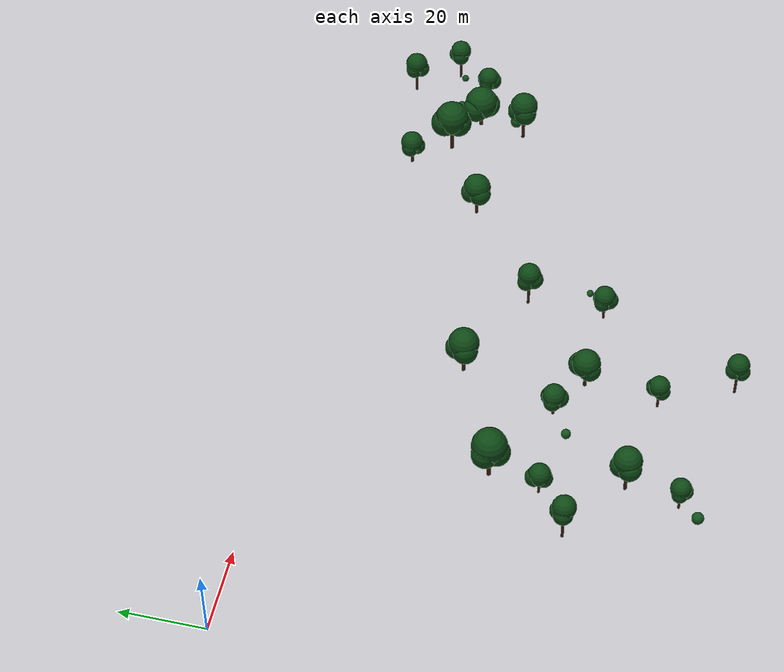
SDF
<sdf version="1.9">
 <world name="forest_monitoring">
  <model name="tree_36">
   <static>true</static>
   <pose>72.70 -61.05 0 0 0 4.54</pose>
   <link name="link">
    <visual name="trunk">
     <pose>0 0 3.84 0 0 0</pose>
     <geometry><cylinder><radius>0.33</radius><length>7.67</length></cylinder></geometry>
     <material>
      <ambient>0.18 0.11 0.06 1</ambient>
      <diffuse>0.24 0.15 0.08 1</diffuse>
      <specular>0.1 0.1 0.1 1</specular>
      <pbr><metal><roughness>0.9</roughness><metalness>0.0</metalness></metal></pbr>
     </material>
    </visual>
    <visual name="canopy_0">
     <pose>0.00 0.00 6.75 0 0 0</pose>
     <geometry><sphere><radius>2.74</radius></sphere></geometry>
     <material>
      <ambient>0.03 0.16 0.05 1</ambient>
      <diffuse>0.05 0.28 0.08 1</diffuse>
      <specular>0.1 0.1 0.1 1</specular>
      <pbr><metal><roughness>1.0</roughness><metalness>0.0</metalness></metal></pbr>
     </material>
    </visual>
    <visual name="canopy_1">
     <pose>1.15 0.33 5.99 0 0 0</pose>
     <geometry><sphere><radius>2.24</radius></sphere></geometry>
     <material>
      <ambient>0.03 0.16 0.05 1</ambient>
      <diffuse>0.05 0.28 0.08 1</diffuse>
      <specular>0.1 0.1 0.1 1</specular>
      <pbr><metal><roughness>1.0</roughness><metalness>0.0</metalness></metal></pbr>
     </material>
    </visual>
    <visual name="canopy_2">
     <pose>-1.04 0.22 5.83 0 0 0</pose>
     <geometry><sphere><radius>2.14</radius></sphere></geometry>
     <material>
      <ambient>0.03 0.16 0.05 1</ambient>
      <diffuse>0.05 0.28 0.08 1</diffuse>
      <specular>0.1 0.1 0.1 1</specular>
      <pbr><metal><roughness>1.0</roughness><metalness>0.0</metalness></metal></pbr>
     </material>
    </visual>
    <visual name="canopy_3">
     <pose>0.11 -1.15 5.68 0 0 0</pose>
     <geometry><sphere><radius>2.08</radius></sphere></geometry>
     <material>
      <ambient>0.03 0.16 0.05 1</ambient>
      <diffuse>0.05 0.28 0.08 1</diffuse>
      <specular>0.1 0.1 0.1 1</specular>
      <pbr><metal><roughness>1.0</roughness><metalness>0.0</metalness></metal></pbr>
     </material>
    </visual>
   </link>
  </model>
  <model name="tree_37">
   <static>true</static>
   <pose>80.02 -84.02 0 0 0 1.06</pose>
   <link name="link">
    <visual name="trunk">
     <pose>0 0 4.21 0 0 0</pose>
     <geometry><cylinder><radius>0.30</radius><length>8.43</length></cylinder></geometry>
     <material>
      <ambient>0.18 0.11 0.06 1</ambient>
      <diffuse>0.24 0.15 0.08 1</diffuse>
      <specular>0.1 0.1 0.1 1</specular>
      <pbr><metal><roughness>0.9</roughness><metalness>0.0</metalness></metal></pbr>
     </material>
    </visual>
    <visual name="canopy_0">
     <pose>0.00 0.00 7.42 0 0 0</pose>
     <geometry><sphere><radius>2.47</radius></sphere></geometry>
     <material>
      <ambient>0.03 0.16 0.05 1</ambient>
      <diffuse>0.05 0.28 0.08 1</diffuse>
      <specular>0.1 0.1 0.1 1</specular>
      <pbr><metal><roughness>1.0</roughness><metalness>0.0</metalness></metal></pbr>
     </material>
    </visual>
    <visual name="canopy_1">
     <pose>1.04 0.30 6.57 0 0 0</pose>
     <geometry><sphere><radius>2.03</radius></sphere></geometry>
     <material>
      <ambient>0.03 0.16 0.05 1</ambient>
      <diffuse>0.05 0.28 0.08 1</diffuse>
      <specular>0.1 0.1 0.1 1</specular>
      <pbr><metal><roughness>1.0</roughness><metalness>0.0</metalness></metal></pbr>
     </material>
    </visual>
    <visual name="canopy_2">
     <pose>-0.94 0.20 6.41 0 0 0</pose>
     <geometry><sphere><radius>1.93</radius></sphere></geometry>
     <material>
      <ambient>0.03 0.16 0.05 1</ambient>
      <diffuse>0.05 0.28 0.08 1</diffuse>
      <specular>0.1 0.1 0.1 1</specular>
      <pbr><metal><roughness>1.0</roughness><metalness>0.0</metalness></metal></pbr>
     </material>
    </visual>
    <visual name="canopy_3">
     <pose>0.10 -1.04 6.24 0 0 0</pose>
     <geometry><sphere><radius>1.88</radius></sphere></geometry>
     <material>
      <ambient>0.03 0.16 0.05 1</ambient>
      <diffuse>0.05 0.28 0.08 1</diffuse>
      <specular>0.1 0.1 0.1 1</specular>
      <pbr><metal><roughness>1.0</roughness><metalness>0.0</metalness></metal></pbr>
     </material>
    </visual>
   </link>
  </model>
  <model name="tree_38">
   <static>true</static>
   <pose>103.49 -49.06 0 0 0 4.16</pose>
   <link name="link">
    <visual name="trunk">
     <pose>0 0 5.86 0 0 0</pose>
     <geometry><cylinder><radius>0.33</radius><length>11.73</length></cylinder></geometry>
     <material>
      <ambient>0.18 0.11 0.06 1</ambient>
      <diffuse>0.24 0.15 0.08 1</diffuse>
      <specular>0.1 0.1 0.1 1</specular>
      <pbr><metal><roughness>0.9</roughness><metalness>0.0</metalness></metal></pbr>
     </material>
    </visual>
    <visual name="canopy_0">
     <pose>0.00 0.00 10.32 0 0 0</pose>
     <geometry><sphere><radius>2.73</radius></sphere></geometry>
     <material>
      <ambient>0.03 0.16 0.05 1</ambient>
      <diffuse>0.05 0.28 0.08 1</diffuse>
      <specular>0.1 0.1 0.1 1</specular>
      <pbr><metal><roughness>1.0</roughness><metalness>0.0</metalness></metal></pbr>
     </material>
    </visual>
    <visual name="canopy_1">
     <pose>1.15 0.33 9.15 0 0 0</pose>
     <geometry><sphere><radius>2.24</radius></sphere></geometry>
     <material>
      <ambient>0.03 0.16 0.05 1</ambient>
      <diffuse>0.05 0.28 0.08 1</diffuse>
      <specular>0.1 0.1 0.1 1</specular>
      <pbr><metal><roughness>1.0</roughness><metalness>0.0</metalness></metal></pbr>
     </material>
    </visual>
    <visual name="canopy_2">
     <pose>-1.04 0.22 8.91 0 0 0</pose>
     <geometry><sphere><radius>2.13</radius></sphere></geometry>
     <material>
      <ambient>0.03 0.16 0.05 1</ambient>
      <diffuse>0.05 0.28 0.08 1</diffuse>
      <specular>0.1 0.1 0.1 1</specular>
      <pbr><metal><roughness>1.0</roughness><metalness>0.0</metalness></metal></pbr>
     </material>
    </visual>
    <visual name="canopy_3">
     <pose>0.11 -1.15 8.68 0 0 0</pose>
     <geometry><sphere><radius>2.07</radius></sphere></geometry>
     <material>
      <ambient>0.03 0.16 0.05 1</ambient>
      <diffuse>0.05 0.28 0.08 1</diffuse>
      <specular>0.1 0.1 0.1 1</specular>
      <pbr><metal><roughness>1.0</roughness><metalness>0.0</metalness></metal></pbr>
     </material>
    </visual>
   </link>
  </model>
  <model name="tree_39">
   <static>true</static>
   <pose>52.89 -50.21 0 0 0 6.06</pose>
   <link name="link">
    <visual name="trunk">
     <pose>0 0 6.19 0 0 0</pose>
     <geometry><cylinder><radius>0.50</radius><length>12.39</length></cylinder></geometry>
     <material>
      <ambient>0.18 0.11 0.06 1</ambient>
      <diffuse>0.24 0.15 0.08 1</diffuse>
      <specular>0.1 0.1 0.1 1</specular>
      <pbr><metal><roughness>0.9</roughness><metalness>0.0</metalness></metal></pbr>
     </material>
    </visual>
    <visual name="canopy_0">
     <pose>0.00 0.00 10.90 0 0 0</pose>
     <geometry><sphere><radius>4.14</radius></sphere></geometry>
     <material>
      <ambient>0.03 0.16 0.05 1</ambient>
      <diffuse>0.05 0.28 0.08 1</diffuse>
      <specular>0.1 0.1 0.1 1</specular>
      <pbr><metal><roughness>1.0</roughness><metalness>0.0</metalness></metal></pbr>
     </material>
    </visual>
    <visual name="canopy_1">
     <pose>1.74 0.50 9.66 0 0 0</pose>
     <geometry><sphere><radius>3.40</radius></sphere></geometry>
     <material>
      <ambient>0.03 0.16 0.05 1</ambient>
      <diffuse>0.05 0.28 0.08 1</diffuse>
      <specular>0.1 0.1 0.1 1</specular>
      <pbr><metal><roughness>1.0</roughness><metalness>0.0</metalness></metal></pbr>
     </material>
    </visual>
    <visual name="canopy_2">
     <pose>-1.57 0.33 9.41 0 0 0</pose>
     <geometry><sphere><radius>3.23</radius></sphere></geometry>
     <material>
      <ambient>0.03 0.16 0.05 1</ambient>
      <diffuse>0.05 0.28 0.08 1</diffuse>
      <specular>0.1 0.1 0.1 1</specular>
      <pbr><metal><roughness>1.0</roughness><metalness>0.0</metalness></metal></pbr>
     </material>
    </visual>
    <visual name="canopy_3">
     <pose>0.17 -1.74 9.17 0 0 0</pose>
     <geometry><sphere><radius>3.15</radius></sphere></geometry>
     <material>
      <ambient>0.03 0.16 0.05 1</ambient>
      <diffuse>0.05 0.28 0.08 1</diffuse>
      <specular>0.1 0.1 0.1 1</specular>
      <pbr><metal><roughness>1.0</roughness><metalness>0.0</metalness></metal></pbr>
     </material>
    </visual>
   </link>
  </model>
  <model name="tree_40">
   <static>true</static>
   <pose>80.45 -38.35 0 0 0 3.26</pose>
   <link name="link">
    <visual name="trunk">
     <pose>0 0 5.69 0 0 0</pose>
     <geometry><cylinder><radius>0.44</radius><length>11.37</length></cylinder></geometry>
     <material>
      <ambient>0.18 0.11 0.06 1</ambient>
      <diffuse>0.24 0.15 0.08 1</diffuse>
      <specular>0.1 0.1 0.1 1</specular>
      <pbr><metal><roughness>0.9</roughness><metalness>0.0</metalness></metal></pbr>
     </material>
    </visual>
    <visual name="canopy_0">
     <pose>0.00 0.00 10.01 0 0 0</pose>
     <geometry><sphere><radius>3.63</radius></sphere></geometry>
     <material>
      <ambient>0.03 0.16 0.05 1</ambient>
      <diffuse>0.05 0.28 0.08 1</diffuse>
      <specular>0.1 0.1 0.1 1</specular>
      <pbr><metal><roughness>1.0</roughness><metalness>0.0</metalness></metal></pbr>
     </material>
    </visual>
    <visual name="canopy_1">
     <pose>1.52 0.44 8.87 0 0 0</pose>
     <geometry><sphere><radius>2.98</radius></sphere></geometry>
     <material>
      <ambient>0.03 0.16 0.05 1</ambient>
      <diffuse>0.05 0.28 0.08 1</diffuse>
      <specular>0.1 0.1 0.1 1</specular>
      <pbr><metal><roughness>1.0</roughness><metalness>0.0</metalness></metal></pbr>
     </material>
    </visual>
    <visual name="canopy_2">
     <pose>-1.38 0.29 8.64 0 0 0</pose>
     <geometry><sphere><radius>2.83</radius></sphere></geometry>
     <material>
      <ambient>0.03 0.16 0.05 1</ambient>
      <diffuse>0.05 0.28 0.08 1</diffuse>
      <specular>0.1 0.1 0.1 1</specular>
      <pbr><metal><roughness>1.0</roughness><metalness>0.0</metalness></metal></pbr>
     </material>
    </visual>
    <visual name="canopy_3">
     <pose>0.15 -1.52 8.42 0 0 0</pose>
     <geometry><sphere><radius>2.76</radius></sphere></geometry>
     <material>
      <ambient>0.03 0.16 0.05 1</ambient>
      <diffuse>0.05 0.28 0.08 1</diffuse>
      <specular>0.1 0.1 0.1 1</specular>
      <pbr><metal><roughness>1.0</roughness><metalness>0.0</metalness></metal></pbr>
     </material>
    </visual>
   </link>
  </model>
  <model name="tree_41">
   <static>true</static>
   <pose>55.80 -80.73 0 0 0 3.35</pose>
   <link name="link">
    <visual name="trunk">
     <pose>0 0 6.03 0 0 0</pose>
     <geometry><cylinder><radius>0.40</radius><length>12.07</length></cylinder></geometry>
     <material>
      <ambient>0.18 0.11 0.06 1</ambient>
      <diffuse>0.24 0.15 0.08 1</diffuse>
      <specular>0.1 0.1 0.1 1</specular>
      <pbr><metal><roughness>0.9</roughness><metalness>0.0</metalness></metal></pbr>
     </material>
    </visual>
    <visual name="canopy_0">
     <pose>0.00 0.00 10.62 0 0 0</pose>
     <geometry><sphere><radius>3.36</radius></sphere></geometry>
     <material>
      <ambient>0.03 0.16 0.05 1</ambient>
      <diffuse>0.05 0.28 0.08 1</diffuse>
      <specular>0.1 0.1 0.1 1</specular>
      <pbr><metal><roughness>1.0</roughness><metalness>0.0</metalness></metal></pbr>
     </material>
    </visual>
    <visual name="canopy_1">
     <pose>1.41 0.40 9.41 0 0 0</pose>
     <geometry><sphere><radius>2.75</radius></sphere></geometry>
     <material>
      <ambient>0.03 0.16 0.05 1</ambient>
      <diffuse>0.05 0.28 0.08 1</diffuse>
      <specular>0.1 0.1 0.1 1</specular>
      <pbr><metal><roughness>1.0</roughness><metalness>0.0</metalness></metal></pbr>
     </material>
    </visual>
    <visual name="canopy_2">
     <pose>-1.28 0.27 9.17 0 0 0</pose>
     <geometry><sphere><radius>2.62</radius></sphere></geometry>
     <material>
      <ambient>0.03 0.16 0.05 1</ambient>
      <diffuse>0.05 0.28 0.08 1</diffuse>
      <specular>0.1 0.1 0.1 1</specular>
      <pbr><metal><roughness>1.0</roughness><metalness>0.0</metalness></metal></pbr>
     </material>
    </visual>
    <visual name="canopy_3">
     <pose>0.13 -1.41 8.93 0 0 0</pose>
     <geometry><sphere><radius>2.55</radius></sphere></geometry>
     <material>
      <ambient>0.03 0.16 0.05 1</ambient>
      <diffuse>0.05 0.28 0.08 1</diffuse>
      <specular>0.1 0.1 0.1 1</specular>
      <pbr><metal><roughness>1.0</roughness><metalness>0.0</metalness></metal></pbr>
     </material>
    </visual>
   </link>
  </model>
  <model name="tree_42">
   <static>true</static>
   <pose>102.93 -67.28 0 0 0 4.37</pose>
   <link name="link">
    <visual name="trunk">
     <pose>0 0 4.38 0 0 0</pose>
     <geometry><cylinder><radius>0.31</radius><length>8.75</length></cylinder></geometry>
     <material>
      <ambient>0.18 0.11 0.06 1</ambient>
      <diffuse>0.24 0.15 0.08 1</diffuse>
      <specular>0.1 0.1 0.1 1</specular>
      <pbr><metal><roughness>0.9</roughness><metalness>0.0</metalness></metal></pbr>
     </material>
    </visual>
    <visual name="canopy_0">
     <pose>0.00 0.00 7.70 0 0 0</pose>
     <geometry><sphere><radius>2.59</radius></sphere></geometry>
     <material>
      <ambient>0.03 0.16 0.05 1</ambient>
      <diffuse>0.05 0.28 0.08 1</diffuse>
      <specular>0.1 0.1 0.1 1</specular>
      <pbr><metal><roughness>1.0</roughness><metalness>0.0</metalness></metal></pbr>
     </material>
    </visual>
    <visual name="canopy_1">
     <pose>1.09 0.31 6.83 0 0 0</pose>
     <geometry><sphere><radius>2.12</radius></sphere></geometry>
     <material>
      <ambient>0.03 0.16 0.05 1</ambient>
      <diffuse>0.05 0.28 0.08 1</diffuse>
      <specular>0.1 0.1 0.1 1</specular>
      <pbr><metal><roughness>1.0</roughness><metalness>0.0</metalness></metal></pbr>
     </material>
    </visual>
    <visual name="canopy_2">
     <pose>-0.98 0.21 6.65 0 0 0</pose>
     <geometry><sphere><radius>2.02</radius></sphere></geometry>
     <material>
      <ambient>0.03 0.16 0.05 1</ambient>
      <diffuse>0.05 0.28 0.08 1</diffuse>
      <specular>0.1 0.1 0.1 1</specular>
      <pbr><metal><roughness>1.0</roughness><metalness>0.0</metalness></metal></pbr>
     </material>
    </visual>
    <visual name="canopy_3">
     <pose>0.10 -1.09 6.48 0 0 0</pose>
     <geometry><sphere><radius>1.97</radius></sphere></geometry>
     <material>
      <ambient>0.03 0.16 0.05 1</ambient>
      <diffuse>0.05 0.28 0.08 1</diffuse>
      <specular>0.1 0.1 0.1 1</specular>
      <pbr><metal><roughness>1.0</roughness><metalness>0.0</metalness></metal></pbr>
     </material>
    </visual>
   </link>
  </model>
  <model name="tree_43">
   <static>true</static>
   <pose>50.64 -62.07 0 0 0 1.60</pose>
   <link name="link">
    <visual name="trunk">
     <pose>0 0 3.78 0 0 0</pose>
     <geometry><cylinder><radius>0.32</radius><length>7.56</length></cylinder></geometry>
     <material>
      <ambient>0.18 0.11 0.06 1</ambient>
      <diffuse>0.24 0.15 0.08 1</diffuse>
      <specular>0.1 0.1 0.1 1</specular>
      <pbr><metal><roughness>0.9</roughness><metalness>0.0</metalness></metal></pbr>
     </material>
    </visual>
    <visual name="canopy_0">
     <pose>0.00 0.00 6.66 0 0 0</pose>
     <geometry><sphere><radius>2.65</radius></sphere></geometry>
     <material>
      <ambient>0.03 0.16 0.05 1</ambient>
      <diffuse>0.05 0.28 0.08 1</diffuse>
      <specular>0.1 0.1 0.1 1</specular>
      <pbr><metal><roughness>1.0</roughness><metalness>0.0</metalness></metal></pbr>
     </material>
    </visual>
    <visual name="canopy_1">
     <pose>1.11 0.32 5.90 0 0 0</pose>
     <geometry><sphere><radius>2.17</radius></sphere></geometry>
     <material>
      <ambient>0.03 0.16 0.05 1</ambient>
      <diffuse>0.05 0.28 0.08 1</diffuse>
      <specular>0.1 0.1 0.1 1</specular>
      <pbr><metal><roughness>1.0</roughness><metalness>0.0</metalness></metal></pbr>
     </material>
    </visual>
    <visual name="canopy_2">
     <pose>-1.01 0.21 5.75 0 0 0</pose>
     <geometry><sphere><radius>2.06</radius></sphere></geometry>
     <material>
      <ambient>0.03 0.16 0.05 1</ambient>
      <diffuse>0.05 0.28 0.08 1</diffuse>
      <specular>0.1 0.1 0.1 1</specular>
      <pbr><metal><roughness>1.0</roughness><metalness>0.0</metalness></metal></pbr>
     </material>
    </visual>
    <visual name="canopy_3">
     <pose>0.11 -1.11 5.60 0 0 0</pose>
     <geometry><sphere><radius>2.01</radius></sphere></geometry>
     <material>
      <ambient>0.03 0.16 0.05 1</ambient>
      <diffuse>0.05 0.28 0.08 1</diffuse>
      <specular>0.1 0.1 0.1 1</specular>
      <pbr><metal><roughness>1.0</roughness><metalness>0.0</metalness></metal></pbr>
     </material>
    </visual>
   </link>
  </model>
  <model name="tree_44">
   <static>true</static>
   <pose>87.93 -100.73 0 0 0 5.62</pose>
   <link name="link">
    <visual name="trunk">
     <pose>0 0 5.78 0 0 0</pose>
     <geometry><cylinder><radius>0.31</radius><length>11.56</length></cylinder></geometry>
     <material>
      <ambient>0.18 0.11 0.06 1</ambient>
      <diffuse>0.24 0.15 0.08 1</diffuse>
      <specular>0.1 0.1 0.1 1</specular>
      <pbr><metal><roughness>0.9</roughness><metalness>0.0</metalness></metal></pbr>
     </material>
    </visual>
    <visual name="canopy_0">
     <pose>0.00 0.00 10.17 0 0 0</pose>
     <geometry><sphere><radius>2.61</radius></sphere></geometry>
     <material>
      <ambient>0.03 0.16 0.05 1</ambient>
      <diffuse>0.05 0.28 0.08 1</diffuse>
      <specular>0.1 0.1 0.1 1</specular>
      <pbr><metal><roughness>1.0</roughness><metalness>0.0</metalness></metal></pbr>
     </material>
    </visual>
    <visual name="canopy_1">
     <pose>1.10 0.31 9.02 0 0 0</pose>
     <geometry><sphere><radius>2.14</radius></sphere></geometry>
     <material>
      <ambient>0.03 0.16 0.05 1</ambient>
      <diffuse>0.05 0.28 0.08 1</diffuse>
      <specular>0.1 0.1 0.1 1</specular>
      <pbr><metal><roughness>1.0</roughness><metalness>0.0</metalness></metal></pbr>
     </material>
    </visual>
    <visual name="canopy_2">
     <pose>-0.99 0.21 8.78 0 0 0</pose>
     <geometry><sphere><radius>2.04</radius></sphere></geometry>
     <material>
      <ambient>0.03 0.16 0.05 1</ambient>
      <diffuse>0.05 0.28 0.08 1</diffuse>
      <specular>0.1 0.1 0.1 1</specular>
      <pbr><metal><roughness>1.0</roughness><metalness>0.0</metalness></metal></pbr>
     </material>
    </visual>
    <visual name="canopy_3">
     <pose>0.10 -1.10 8.55 0 0 0</pose>
     <geometry><sphere><radius>1.99</radius></sphere></geometry>
     <material>
      <ambient>0.03 0.16 0.05 1</ambient>
      <diffuse>0.05 0.28 0.08 1</diffuse>
      <specular>0.1 0.1 0.1 1</specular>
      <pbr><metal><roughness>1.0</roughness><metalness>0.0</metalness></metal></pbr>
     </material>
    </visual>
   </link>
  </model>
  <model name="tree_45">
   <static>true</static>
   <pose>53.36 -93.23 0 0 0 0.16</pose>
   <link name="link">
    <visual name="trunk">
     <pose>0 0 4.18 0 0 0</pose>
     <geometry><cylinder><radius>0.29</radius><length>8.35</length></cylinder></geometry>
     <material>
      <ambient>0.18 0.11 0.06 1</ambient>
      <diffuse>0.24 0.15 0.08 1</diffuse>
      <specular>0.1 0.1 0.1 1</specular>
      <pbr><metal><roughness>0.9</roughness><metalness>0.0</metalness></metal></pbr>
     </material>
    </visual>
    <visual name="canopy_0">
     <pose>0.00 0.00 7.35 0 0 0</pose>
     <geometry><sphere><radius>2.43</radius></sphere></geometry>
     <material>
      <ambient>0.03 0.16 0.05 1</ambient>
      <diffuse>0.05 0.28 0.08 1</diffuse>
      <specular>0.1 0.1 0.1 1</specular>
      <pbr><metal><roughness>1.0</roughness><metalness>0.0</metalness></metal></pbr>
     </material>
    </visual>
    <visual name="canopy_1">
     <pose>1.02 0.29 6.52 0 0 0</pose>
     <geometry><sphere><radius>1.99</radius></sphere></geometry>
     <material>
      <ambient>0.03 0.16 0.05 1</ambient>
      <diffuse>0.05 0.28 0.08 1</diffuse>
      <specular>0.1 0.1 0.1 1</specular>
      <pbr><metal><roughness>1.0</roughness><metalness>0.0</metalness></metal></pbr>
     </material>
    </visual>
    <visual name="canopy_2">
     <pose>-0.92 0.19 6.35 0 0 0</pose>
     <geometry><sphere><radius>1.89</radius></sphere></geometry>
     <material>
      <ambient>0.03 0.16 0.05 1</ambient>
      <diffuse>0.05 0.28 0.08 1</diffuse>
      <specular>0.1 0.1 0.1 1</specular>
      <pbr><metal><roughness>1.0</roughness><metalness>0.0</metalness></metal></pbr>
     </material>
    </visual>
    <visual name="canopy_3">
     <pose>0.10 -1.02 6.18 0 0 0</pose>
     <geometry><sphere><radius>1.84</radius></sphere></geometry>
     <material>
      <ambient>0.03 0.16 0.05 1</ambient>
      <diffuse>0.05 0.28 0.08 1</diffuse>
      <specular>0.1 0.1 0.1 1</specular>
      <pbr><metal><roughness>1.0</roughness><metalness>0.0</metalness></metal></pbr>
     </material>
    </visual>
   </link>
  </model>
  <model name="tree_46">
   <static>true</static>
   <pose>40.21 -69.42 0 0 0 2.90</pose>
   <link name="link">
    <visual name="trunk">
     <pose>0 0 6.41 0 0 0</pose>
     <geometry><cylinder><radius>0.33</radius><length>12.83</length></cylinder></geometry>
     <material>
      <ambient>0.18 0.11 0.06 1</ambient>
      <diffuse>0.24 0.15 0.08 1</diffuse>
      <specular>0.1 0.1 0.1 1</specular>
      <pbr><metal><roughness>0.9</roughness><metalness>0.0</metalness></metal></pbr>
     </material>
    </visual>
    <visual name="canopy_0">
     <pose>0.00 0.00 11.29 0 0 0</pose>
     <geometry><sphere><radius>2.77</radius></sphere></geometry>
     <material>
      <ambient>0.03 0.16 0.05 1</ambient>
      <diffuse>0.05 0.28 0.08 1</diffuse>
      <specular>0.1 0.1 0.1 1</specular>
      <pbr><metal><roughness>1.0</roughness><metalness>0.0</metalness></metal></pbr>
     </material>
    </visual>
    <visual name="canopy_1">
     <pose>1.16 0.33 10.01 0 0 0</pose>
     <geometry><sphere><radius>2.27</radius></sphere></geometry>
     <material>
      <ambient>0.03 0.16 0.05 1</ambient>
      <diffuse>0.05 0.28 0.08 1</diffuse>
      <specular>0.1 0.1 0.1 1</specular>
      <pbr><metal><roughness>1.0</roughness><metalness>0.0</metalness></metal></pbr>
     </material>
    </visual>
    <visual name="canopy_2">
     <pose>-1.05 0.22 9.75 0 0 0</pose>
     <geometry><sphere><radius>2.16</radius></sphere></geometry>
     <material>
      <ambient>0.03 0.16 0.05 1</ambient>
      <diffuse>0.05 0.28 0.08 1</diffuse>
      <specular>0.1 0.1 0.1 1</specular>
      <pbr><metal><roughness>1.0</roughness><metalness>0.0</metalness></metal></pbr>
     </material>
    </visual>
    <visual name="canopy_3">
     <pose>0.11 -1.16 9.49 0 0 0</pose>
     <geometry><sphere><radius>2.10</radius></sphere></geometry>
     <material>
      <ambient>0.03 0.16 0.05 1</ambient>
      <diffuse>0.05 0.28 0.08 1</diffuse>
      <specular>0.1 0.1 0.1 1</specular>
      <pbr><metal><roughness>1.0</roughness><metalness>0.0</metalness></metal></pbr>
     </material>
    </visual>
   </link>
  </model>
  <model name="tree_47">
   <static>true</static>
   <pose>82.32 -66.65 0 0 0 1.06</pose>
   <link name="link">
    <visual name="trunk">
     <pose>0 0 4.58 0 0 0</pose>
     <geometry><cylinder><radius>0.40</radius><length>9.17</length></cylinder></geometry>
     <material>
      <ambient>0.18 0.11 0.06 1</ambient>
      <diffuse>0.24 0.15 0.08 1</diffuse>
      <specular>0.1 0.1 0.1 1</specular>
      <pbr><metal><roughness>0.9</roughness><metalness>0.0</metalness></metal></pbr>
     </material>
    </visual>
    <visual name="canopy_0">
     <pose>0.00 0.00 8.07 0 0 0</pose>
     <geometry><sphere><radius>3.36</radius></sphere></geometry>
     <material>
      <ambient>0.03 0.16 0.05 1</ambient>
      <diffuse>0.05 0.28 0.08 1</diffuse>
      <specular>0.1 0.1 0.1 1</specular>
      <pbr><metal><roughness>1.0</roughness><metalness>0.0</metalness></metal></pbr>
     </material>
    </visual>
    <visual name="canopy_1">
     <pose>1.41 0.40 7.15 0 0 0</pose>
     <geometry><sphere><radius>2.76</radius></sphere></geometry>
     <material>
      <ambient>0.03 0.16 0.05 1</ambient>
      <diffuse>0.05 0.28 0.08 1</diffuse>
      <specular>0.1 0.1 0.1 1</specular>
      <pbr><metal><roughness>1.0</roughness><metalness>0.0</metalness></metal></pbr>
     </material>
    </visual>
    <visual name="canopy_2">
     <pose>-1.28 0.27 6.97 0 0 0</pose>
     <geometry><sphere><radius>2.62</radius></sphere></geometry>
     <material>
      <ambient>0.03 0.16 0.05 1</ambient>
      <diffuse>0.05 0.28 0.08 1</diffuse>
      <specular>0.1 0.1 0.1 1</specular>
      <pbr><metal><roughness>1.0</roughness><metalness>0.0</metalness></metal></pbr>
     </material>
    </visual>
    <visual name="canopy_3">
     <pose>0.13 -1.41 6.78 0 0 0</pose>
     <geometry><sphere><radius>2.56</radius></sphere></geometry>
     <material>
      <ambient>0.03 0.16 0.05 1</ambient>
      <diffuse>0.05 0.28 0.08 1</diffuse>
      <specular>0.1 0.1 0.1 1</specular>
      <pbr><metal><roughness>1.0</roughness><metalness>0.0</metalness></metal></pbr>
     </material>
    </visual>
   </link>
  </model>
  <model name="tree_60">
   <static>true</static>
   <pose>141.65 -11.87 0 0 0 0.02</pose>
   <link name="link">
    <visual name="trunk">
     <pose>0 0 3.89 0 0 0</pose>
     <geometry><cylinder><radius>0.33</radius><length>7.79</length></cylinder></geometry>
     <material>
      <ambient>0.18 0.11 0.06 1</ambient>
      <diffuse>0.24 0.15 0.08 1</diffuse>
      <specular>0.1 0.1 0.1 1</specular>
      <pbr><metal><roughness>0.9</roughness><metalness>0.0</metalness></metal></pbr>
     </material>
    </visual>
    <visual name="canopy_0">
     <pose>0.00 0.00 6.85 0 0 0</pose>
     <geometry><sphere><radius>2.73</radius></sphere></geometry>
     <material>
      <ambient>0.03 0.16 0.05 1</ambient>
      <diffuse>0.05 0.28 0.08 1</diffuse>
      <specular>0.1 0.1 0.1 1</specular>
      <pbr><metal><roughness>1.0</roughness><metalness>0.0</metalness></metal></pbr>
     </material>
    </visual>
    <visual name="canopy_1">
     <pose>1.15 0.33 6.07 0 0 0</pose>
     <geometry><sphere><radius>2.24</radius></sphere></geometry>
     <material>
      <ambient>0.03 0.16 0.05 1</ambient>
      <diffuse>0.05 0.28 0.08 1</diffuse>
      <specular>0.1 0.1 0.1 1</specular>
      <pbr><metal><roughness>1.0</roughness><metalness>0.0</metalness></metal></pbr>
     </material>
    </visual>
    <visual name="canopy_2">
     <pose>-1.04 0.22 5.92 0 0 0</pose>
     <geometry><sphere><radius>2.13</radius></sphere></geometry>
     <material>
      <ambient>0.03 0.16 0.05 1</ambient>
      <diffuse>0.05 0.28 0.08 1</diffuse>
      <specular>0.1 0.1 0.1 1</specular>
      <pbr><metal><roughness>1.0</roughness><metalness>0.0</metalness></metal></pbr>
     </material>
    </visual>
    <visual name="canopy_3">
     <pose>0.11 -1.15 5.76 0 0 0</pose>
     <geometry><sphere><radius>2.08</radius></sphere></geometry>
     <material>
      <ambient>0.03 0.16 0.05 1</ambient>
      <diffuse>0.05 0.28 0.08 1</diffuse>
      <specular>0.1 0.1 0.1 1</specular>
      <pbr><metal><roughness>1.0</roughness><metalness>0.0</metalness></metal></pbr>
     </material>
    </visual>
   </link>
  </model>
  <model name="tree_63">
   <static>true</static>
   <pose>167.80 -25.74 0 0 0 4.44</pose>
   <link name="link">
    <visual name="trunk">
     <pose>0 0 3.80 0 0 0</pose>
     <geometry><cylinder><radius>0.31</radius><length>7.60</length></cylinder></geometry>
     <material>
      <ambient>0.18 0.11 0.06 1</ambient>
      <diffuse>0.24 0.15 0.08 1</diffuse>
      <specular>0.1 0.1 0.1 1</specular>
      <pbr><metal><roughness>0.9</roughness><metalness>0.0</metalness></metal></pbr>
     </material>
    </visual>
    <visual name="canopy_0">
     <pose>0.00 0.00 6.69 0 0 0</pose>
     <geometry><sphere><radius>2.58</radius></sphere></geometry>
     <material>
      <ambient>0.03 0.16 0.05 1</ambient>
      <diffuse>0.05 0.28 0.08 1</diffuse>
      <specular>0.1 0.1 0.1 1</specular>
      <pbr><metal><roughness>1.0</roughness><metalness>0.0</metalness></metal></pbr>
     </material>
    </visual>
    <visual name="canopy_1">
     <pose>1.08 0.31 5.93 0 0 0</pose>
     <geometry><sphere><radius>2.11</radius></sphere></geometry>
     <material>
      <ambient>0.03 0.16 0.05 1</ambient>
      <diffuse>0.05 0.28 0.08 1</diffuse>
      <specular>0.1 0.1 0.1 1</specular>
      <pbr><metal><roughness>1.0</roughness><metalness>0.0</metalness></metal></pbr>
     </material>
    </visual>
    <visual name="canopy_2">
     <pose>-0.98 0.21 5.77 0 0 0</pose>
     <geometry><sphere><radius>2.01</radius></sphere></geometry>
     <material>
      <ambient>0.03 0.16 0.05 1</ambient>
      <diffuse>0.05 0.28 0.08 1</diffuse>
      <specular>0.1 0.1 0.1 1</specular>
      <pbr><metal><roughness>1.0</roughness><metalness>0.0</metalness></metal></pbr>
     </material>
    </visual>
    <visual name="canopy_3">
     <pose>0.10 -1.08 5.62 0 0 0</pose>
     <geometry><sphere><radius>1.96</radius></sphere></geometry>
     <material>
      <ambient>0.03 0.16 0.05 1</ambient>
      <diffuse>0.05 0.28 0.08 1</diffuse>
      <specular>0.1 0.1 0.1 1</specular>
      <pbr><metal><roughness>1.0</roughness><metalness>0.0</metalness></metal></pbr>
     </material>
    </visual>
   </link>
  </model>
  <model name="tree_64">
   <static>true</static>
   <pose>148.43 -20.49 0 0 0 1.72</pose>
   <link name="link">
    <visual name="trunk">
     <pose>0 0 6.04 0 0 0</pose>
     <geometry><cylinder><radius>0.50</radius><length>12.07</length></cylinder></geometry>
     <material>
      <ambient>0.18 0.11 0.06 1</ambient>
      <diffuse>0.24 0.15 0.08 1</diffuse>
      <specular>0.1 0.1 0.1 1</specular>
      <pbr><metal><roughness>0.9</roughness><metalness>0.0</metalness></metal></pbr>
     </material>
    </visual>
    <visual name="canopy_0">
     <pose>0.00 0.00 10.62 0 0 0</pose>
     <geometry><sphere><radius>4.16</radius></sphere></geometry>
     <material>
      <ambient>0.03 0.16 0.05 1</ambient>
      <diffuse>0.05 0.28 0.08 1</diffuse>
      <specular>0.1 0.1 0.1 1</specular>
      <pbr><metal><roughness>1.0</roughness><metalness>0.0</metalness></metal></pbr>
     </material>
    </visual>
    <visual name="canopy_1">
     <pose>1.75 0.50 9.42 0 0 0</pose>
     <geometry><sphere><radius>3.41</radius></sphere></geometry>
     <material>
      <ambient>0.03 0.16 0.05 1</ambient>
      <diffuse>0.05 0.28 0.08 1</diffuse>
      <specular>0.1 0.1 0.1 1</specular>
      <pbr><metal><roughness>1.0</roughness><metalness>0.0</metalness></metal></pbr>
     </material>
    </visual>
    <visual name="canopy_2">
     <pose>-1.58 0.33 9.18 0 0 0</pose>
     <geometry><sphere><radius>3.25</radius></sphere></geometry>
     <material>
      <ambient>0.03 0.16 0.05 1</ambient>
      <diffuse>0.05 0.28 0.08 1</diffuse>
      <specular>0.1 0.1 0.1 1</specular>
      <pbr><metal><roughness>1.0</roughness><metalness>0.0</metalness></metal></pbr>
     </material>
    </visual>
    <visual name="canopy_3">
     <pose>0.17 -1.75 8.93 0 0 0</pose>
     <geometry><sphere><radius>3.16</radius></sphere></geometry>
     <material>
      <ambient>0.03 0.16 0.05 1</ambient>
      <diffuse>0.05 0.28 0.08 1</diffuse>
      <specular>0.1 0.1 0.1 1</specular>
      <pbr><metal><roughness>1.0</roughness><metalness>0.0</metalness></metal></pbr>
     </material>
    </visual>
   </link>
  </model>
  <model name="tree_65">
   <static>true</static>
   <pose>158.02 -25.95 0 0 0 2.24</pose>
   <link name="link">
    <visual name="trunk">
     <pose>0 0 4.32 0 0 0</pose>
     <geometry><cylinder><radius>0.49</radius><length>8.64</length></cylinder></geometry>
     <material>
      <ambient>0.18 0.11 0.06 1</ambient>
      <diffuse>0.24 0.15 0.08 1</diffuse>
      <specular>0.1 0.1 0.1 1</specular>
      <pbr><metal><roughness>0.9</roughness><metalness>0.0</metalness></metal></pbr>
     </material>
    </visual>
    <visual name="canopy_0">
     <pose>0.00 0.00 7.60 0 0 0</pose>
     <geometry><sphere><radius>4.06</radius></sphere></geometry>
     <material>
      <ambient>0.03 0.16 0.05 1</ambient>
      <diffuse>0.05 0.28 0.08 1</diffuse>
      <specular>0.1 0.1 0.1 1</specular>
      <pbr><metal><roughness>1.0</roughness><metalness>0.0</metalness></metal></pbr>
     </material>
    </visual>
    <visual name="canopy_1">
     <pose>1.70 0.49 6.74 0 0 0</pose>
     <geometry><sphere><radius>3.33</radius></sphere></geometry>
     <material>
      <ambient>0.03 0.16 0.05 1</ambient>
      <diffuse>0.05 0.28 0.08 1</diffuse>
      <specular>0.1 0.1 0.1 1</specular>
      <pbr><metal><roughness>1.0</roughness><metalness>0.0</metalness></metal></pbr>
     </material>
    </visual>
    <visual name="canopy_2">
     <pose>-1.54 0.32 6.56 0 0 0</pose>
     <geometry><sphere><radius>3.17</radius></sphere></geometry>
     <material>
      <ambient>0.03 0.16 0.05 1</ambient>
      <diffuse>0.05 0.28 0.08 1</diffuse>
      <specular>0.1 0.1 0.1 1</specular>
      <pbr><metal><roughness>1.0</roughness><metalness>0.0</metalness></metal></pbr>
     </material>
    </visual>
    <visual name="canopy_3">
     <pose>0.16 -1.70 6.39 0 0 0</pose>
     <geometry><sphere><radius>3.09</radius></sphere></geometry>
     <material>
      <ambient>0.03 0.16 0.05 1</ambient>
      <diffuse>0.05 0.28 0.08 1</diffuse>
      <specular>0.1 0.1 0.1 1</specular>
      <pbr><metal><roughness>1.0</roughness><metalness>0.0</metalness></metal></pbr>
     </material>
    </visual>
   </link>
  </model>
  <model name="tree_66">
   <static>true</static>
   <pose>173.31 -17.31 0 0 0 2.99</pose>
   <link name="link">
    <visual name="trunk">
     <pose>0 0 5.20 0 0 0</pose>
     <geometry><cylinder><radius>0.30</radius><length>10.41</length></cylinder></geometry>
     <material>
      <ambient>0.18 0.11 0.06 1</ambient>
      <diffuse>0.24 0.15 0.08 1</diffuse>
      <specular>0.1 0.1 0.1 1</specular>
      <pbr><metal><roughness>0.9</roughness><metalness>0.0</metalness></metal></pbr>
     </material>
    </visual>
    <visual name="canopy_0">
     <pose>0.00 0.00 9.16 0 0 0</pose>
     <geometry><sphere><radius>2.52</radius></sphere></geometry>
     <material>
      <ambient>0.03 0.16 0.05 1</ambient>
      <diffuse>0.05 0.28 0.08 1</diffuse>
      <specular>0.1 0.1 0.1 1</specular>
      <pbr><metal><roughness>1.0</roughness><metalness>0.0</metalness></metal></pbr>
     </material>
    </visual>
    <visual name="canopy_1">
     <pose>1.06 0.30 8.12 0 0 0</pose>
     <geometry><sphere><radius>2.07</radius></sphere></geometry>
     <material>
      <ambient>0.03 0.16 0.05 1</ambient>
      <diffuse>0.05 0.28 0.08 1</diffuse>
      <specular>0.1 0.1 0.1 1</specular>
      <pbr><metal><roughness>1.0</roughness><metalness>0.0</metalness></metal></pbr>
     </material>
    </visual>
    <visual name="canopy_2">
     <pose>-0.96 0.20 7.91 0 0 0</pose>
     <geometry><sphere><radius>1.97</radius></sphere></geometry>
     <material>
      <ambient>0.03 0.16 0.05 1</ambient>
      <diffuse>0.05 0.28 0.08 1</diffuse>
      <specular>0.1 0.1 0.1 1</specular>
      <pbr><metal><roughness>1.0</roughness><metalness>0.0</metalness></metal></pbr>
     </material>
    </visual>
    <visual name="canopy_3">
     <pose>0.10 -1.06 7.70 0 0 0</pose>
     <geometry><sphere><radius>1.92</radius></sphere></geometry>
     <material>
      <ambient>0.03 0.16 0.05 1</ambient>
      <diffuse>0.05 0.28 0.08 1</diffuse>
      <specular>0.1 0.1 0.1 1</specular>
      <pbr><metal><roughness>1.0</roughness><metalness>0.0</metalness></metal></pbr>
     </material>
    </visual>
   </link>
  </model>
  <model name="tree_68">
   <static>true</static>
   <pose>128.65 -31.08 0 0 0 3.51</pose>
   <link name="link">
    <visual name="trunk">
     <pose>0 0 5.17 0 0 0</pose>
     <geometry><cylinder><radius>0.40</radius><length>10.34</length></cylinder></geometry>
     <material>
      <ambient>0.18 0.11 0.06 1</ambient>
      <diffuse>0.24 0.15 0.08 1</diffuse>
      <specular>0.1 0.1 0.1 1</specular>
      <pbr><metal><roughness>0.9</roughness><metalness>0.0</metalness></metal></pbr>
     </material>
    </visual>
    <visual name="canopy_0">
     <pose>0.00 0.00 9.10 0 0 0</pose>
     <geometry><sphere><radius>3.32</radius></sphere></geometry>
     <material>
      <ambient>0.03 0.16 0.05 1</ambient>
      <diffuse>0.05 0.28 0.08 1</diffuse>
      <specular>0.1 0.1 0.1 1</specular>
      <pbr><metal><roughness>1.0</roughness><metalness>0.0</metalness></metal></pbr>
     </material>
    </visual>
    <visual name="canopy_1">
     <pose>1.39 0.40 8.07 0 0 0</pose>
     <geometry><sphere><radius>2.72</radius></sphere></geometry>
     <material>
      <ambient>0.03 0.16 0.05 1</ambient>
      <diffuse>0.05 0.28 0.08 1</diffuse>
      <specular>0.1 0.1 0.1 1</specular>
      <pbr><metal><roughness>1.0</roughness><metalness>0.0</metalness></metal></pbr>
     </material>
    </visual>
    <visual name="canopy_2">
     <pose>-1.26 0.27 7.86 0 0 0</pose>
     <geometry><sphere><radius>2.59</radius></sphere></geometry>
     <material>
      <ambient>0.03 0.16 0.05 1</ambient>
      <diffuse>0.05 0.28 0.08 1</diffuse>
      <specular>0.1 0.1 0.1 1</specular>
      <pbr><metal><roughness>1.0</roughness><metalness>0.0</metalness></metal></pbr>
     </material>
    </visual>
    <visual name="canopy_3">
     <pose>0.13 -1.39 7.66 0 0 0</pose>
     <geometry><sphere><radius>2.52</radius></sphere></geometry>
     <material>
      <ambient>0.03 0.16 0.05 1</ambient>
      <diffuse>0.05 0.28 0.08 1</diffuse>
      <specular>0.1 0.1 0.1 1</specular>
      <pbr><metal><roughness>1.0</roughness><metalness>0.0</metalness></metal></pbr>
     </material>
    </visual>
   </link>
  </model>
  <model name="tree_69">
   <static>true</static>
   <pose>155.99 -37.15 0 0 0 3.21</pose>
   <link name="link">
    <visual name="trunk">
     <pose>0 0 6.23 0 0 0</pose>
     <geometry><cylinder><radius>0.41</radius><length>12.46</length></cylinder></geometry>
     <material>
      <ambient>0.18 0.11 0.06 1</ambient>
      <diffuse>0.24 0.15 0.08 1</diffuse>
      <specular>0.1 0.1 0.1 1</specular>
      <pbr><metal><roughness>0.9</roughness><metalness>0.0</metalness></metal></pbr>
     </material>
    </visual>
    <visual name="canopy_0">
     <pose>0.00 0.00 10.96 0 0 0</pose>
     <geometry><sphere><radius>3.38</radius></sphere></geometry>
     <material>
      <ambient>0.03 0.16 0.05 1</ambient>
      <diffuse>0.05 0.28 0.08 1</diffuse>
      <specular>0.1 0.1 0.1 1</specular>
      <pbr><metal><roughness>1.0</roughness><metalness>0.0</metalness></metal></pbr>
     </material>
    </visual>
    <visual name="canopy_1">
     <pose>1.42 0.41 9.71 0 0 0</pose>
     <geometry><sphere><radius>2.78</radius></sphere></geometry>
     <material>
      <ambient>0.03 0.16 0.05 1</ambient>
      <diffuse>0.05 0.28 0.08 1</diffuse>
      <specular>0.1 0.1 0.1 1</specular>
      <pbr><metal><roughness>1.0</roughness><metalness>0.0</metalness></metal></pbr>
     </material>
    </visual>
    <visual name="canopy_2">
     <pose>-1.29 0.27 9.47 0 0 0</pose>
     <geometry><sphere><radius>2.64</radius></sphere></geometry>
     <material>
      <ambient>0.03 0.16 0.05 1</ambient>
      <diffuse>0.05 0.28 0.08 1</diffuse>
      <specular>0.1 0.1 0.1 1</specular>
      <pbr><metal><roughness>1.0</roughness><metalness>0.0</metalness></metal></pbr>
     </material>
    </visual>
    <visual name="canopy_3">
     <pose>0.14 -1.42 9.22 0 0 0</pose>
     <geometry><sphere><radius>2.57</radius></sphere></geometry>
     <material>
      <ambient>0.03 0.16 0.05 1</ambient>
      <diffuse>0.05 0.28 0.08 1</diffuse>
      <specular>0.1 0.1 0.1 1</specular>
      <pbr><metal><roughness>1.0</roughness><metalness>0.0</metalness></metal></pbr>
     </material>
    </visual>
   </link>
  </model>
  <model name="tree_70">
   <static>true</static>
   <pose>166.34 -7.34 0 0 0 6.16</pose>
   <link name="link">
    <visual name="trunk">
     <pose>0 0 5.19 0 0 0</pose>
     <geometry><cylinder><radius>0.32</radius><length>10.38</length></cylinder></geometry>
     <material>
      <ambient>0.18 0.11 0.06 1</ambient>
      <diffuse>0.24 0.15 0.08 1</diffuse>
      <specular>0.1 0.1 0.1 1</specular>
      <pbr><metal><roughness>0.9</roughness><metalness>0.0</metalness></metal></pbr>
     </material>
    </visual>
    <visual name="canopy_0">
     <pose>0.00 0.00 9.13 0 0 0</pose>
     <geometry><sphere><radius>2.69</radius></sphere></geometry>
     <material>
      <ambient>0.03 0.16 0.05 1</ambient>
      <diffuse>0.05 0.28 0.08 1</diffuse>
      <specular>0.1 0.1 0.1 1</specular>
      <pbr><metal><roughness>1.0</roughness><metalness>0.0</metalness></metal></pbr>
     </material>
    </visual>
    <visual name="canopy_1">
     <pose>1.13 0.32 8.09 0 0 0</pose>
     <geometry><sphere><radius>2.20</radius></sphere></geometry>
     <material>
      <ambient>0.03 0.16 0.05 1</ambient>
      <diffuse>0.05 0.28 0.08 1</diffuse>
      <specular>0.1 0.1 0.1 1</specular>
      <pbr><metal><roughness>1.0</roughness><metalness>0.0</metalness></metal></pbr>
     </material>
    </visual>
    <visual name="canopy_2">
     <pose>-1.02 0.21 7.89 0 0 0</pose>
     <geometry><sphere><radius>2.09</radius></sphere></geometry>
     <material>
      <ambient>0.03 0.16 0.05 1</ambient>
      <diffuse>0.05 0.28 0.08 1</diffuse>
      <specular>0.1 0.1 0.1 1</specular>
      <pbr><metal><roughness>1.0</roughness><metalness>0.0</metalness></metal></pbr>
     </material>
    </visual>
    <visual name="canopy_3">
     <pose>0.11 -1.13 7.68 0 0 0</pose>
     <geometry><sphere><radius>2.04</radius></sphere></geometry>
     <material>
      <ambient>0.03 0.16 0.05 1</ambient>
      <diffuse>0.05 0.28 0.08 1</diffuse>
      <specular>0.1 0.1 0.1 1</specular>
      <pbr><metal><roughness>1.0</roughness><metalness>0.0</metalness></metal></pbr>
     </material>
    </visual>
   </link>
  </model>
  <model name="bush_12">
   <static>true</static>
   <pose>67.14 -65.14 0.65 0 0 0</pose>
   <link name="link">
    <visual name="visual">
     <geometry><sphere><radius>1.135</radius></sphere></geometry>
     <material>
      <ambient>0.04 0.20 0.07 1</ambient>
      <diffuse>0.07 0.32 0.11 1</diffuse>
      <specular>0.1 0.1 0.1 1</specular>
      <pbr><metal><roughness>0.8</roughness><metalness>0.0</metalness></metal></pbr>
     </material>
    </visual>
   </link>
  </model>
  <model name="bush_13">
   <static>true</static>
   <pose>56.43 -52.61 0.65 0 0 0</pose>
   <link name="link">
    <visual name="visual">
     <geometry><sphere><radius>0.825</radius></sphere></geometry>
     <material>
      <ambient>0.04 0.20 0.07 1</ambient>
      <diffuse>0.07 0.32 0.11 1</diffuse>
      <specular>0.1 0.1 0.1 1</specular>
      <pbr><metal><roughness>0.8</roughness><metalness>0.0</metalness></metal></pbr>
     </material>
    </visual>
   </link>
  </model>
  <model name="bush_14">
   <static>true</static>
   <pose>108.90 -63.06 0.65 0 0 0</pose>
   <link name="link">
    <visual name="visual">
     <geometry><sphere><radius>0.802</radius></sphere></geometry>
     <material>
      <ambient>0.04 0.20 0.07 1</ambient>
      <diffuse>0.07 0.32 0.11 1</diffuse>
      <specular>0.1 0.1 0.1 1</specular>
      <pbr><metal><roughness>0.8</roughness><metalness>0.0</metalness></metal></pbr>
     </material>
    </visual>
   </link>
  </model>
  <model name="bush_15">
   <static>true</static>
   <pose>51.01 -97.87 0.65 0 0 0</pose>
   <link name="link">
    <visual name="visual">
     <geometry><sphere><radius>1.406</radius></sphere></geometry>
     <material>
      <ambient>0.04 0.20 0.07 1</ambient>
      <diffuse>0.07 0.32 0.11 1</diffuse>
      <specular>0.1 0.1 0.1 1</specular>
      <pbr><metal><roughness>0.8</roughness><metalness>0.0</metalness></metal></pbr>
     </material>
    </visual>
   </link>
  </model>
  <model name="bush_20">
   <static>true</static>
   <pose>147.24 -12.66 0.65 0 0 0</pose>
   <link name="link">
    <visual name="visual">
     <geometry><sphere><radius>1.059</radius></sphere></geometry>
     <material>
      <ambient>0.04 0.20 0.07 1</ambient>
      <diffuse>0.07 0.32 0.11 1</diffuse>
      <specular>0.1 0.1 0.1 1</specular>
      <pbr><metal><roughness>0.8</roughness><metalness>0.0</metalness></metal></pbr>
     </material>
    </visual>
   </link>
  </model>
  <model name="bush_21">
   <static>true</static>
   <pose>162.25 -20.07 0.65 0 0 0</pose>
   <link name="link">
    <visual name="visual">
     <geometry><sphere><radius>1.271</radius></sphere></geometry>
     <material>
      <ambient>0.04 0.20 0.07 1</ambient>
      <diffuse>0.07 0.32 0.11 1</diffuse>
      <specular>0.1 0.1 0.1 1</specular>
      <pbr><metal><roughness>0.8</roughness><metalness>0.0</metalness></metal></pbr>
     </material>
    </visual>
   </link>
  </model>
  <model name="bush_22">
   <static>true</static>
   <pose>172.14 -18.82 0.65 0 0 0</pose>
   <link name="link">
    <visual name="visual">
     <geometry><sphere><radius>0.830</radius></sphere></geometry>
     <material>
      <ambient>0.04 0.20 0.07 1</ambient>
      <diffuse>0.07 0.32 0.11 1</diffuse>
      <specular>0.1 0.1 0.1 1</specular>
      <pbr><metal><roughness>0.8</roughness><metalness>0.0</metalness></metal></pbr>
     </material>
    </visual>
   </link>
  </model>
  <model name="bush_23">
   <static>true</static>
   <pose>160.09 -34.68 0.65 0 0 0</pose>
   <link name="link">
    <visual name="visual">
     <geometry><sphere><radius>1.486</radius></sphere></geometry>
     <material>
      <ambient>0.04 0.20 0.07 1</ambient>
      <diffuse>0.07 0.32 0.11 1</diffuse>
      <specular>0.1 0.1 0.1 1</specular>
      <pbr><metal><roughness>0.8</roughness><metalness>0.0</metalness></metal></pbr>
     </material>
    </visual>
   </link>
  </model>
 </world>
</sdf>
